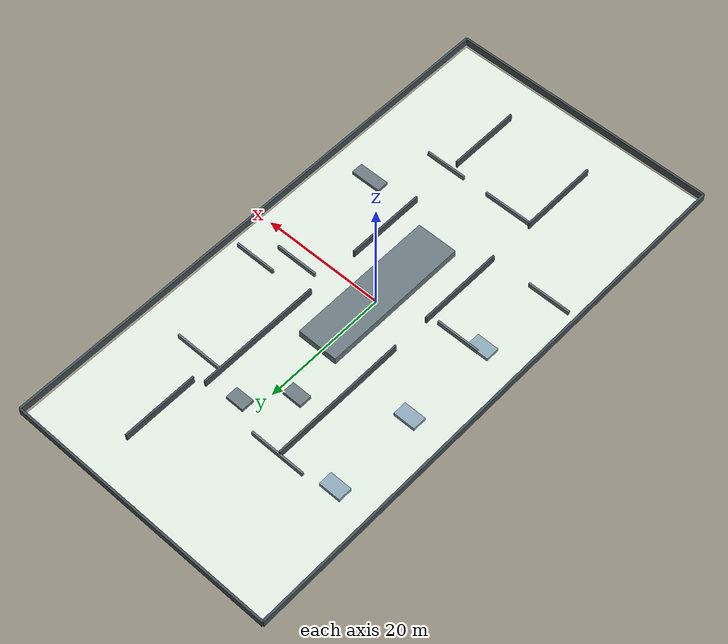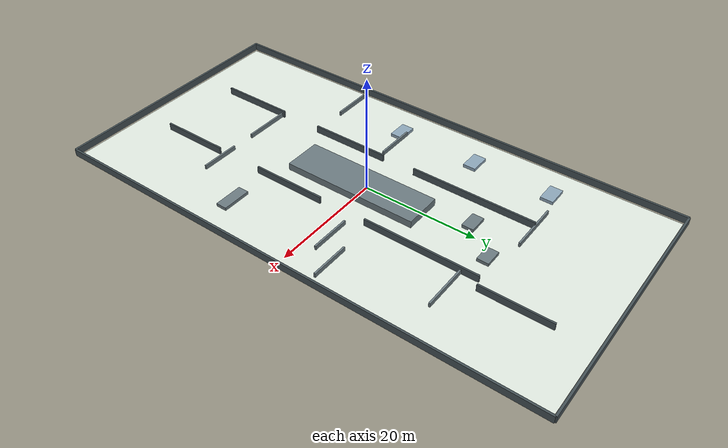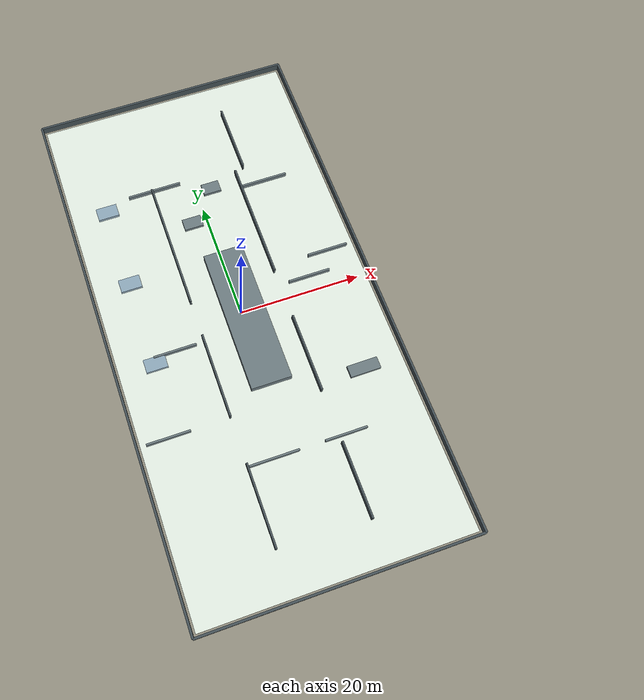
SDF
<?xml version="1.0" ?>
<sdf version="1.6">
  <world name="conflict_trap_facility">
    <gravity>0 0 -9.8</gravity>
    <scene>
      <ambient>0.65 0.65 0.65 1</ambient>
      <background>0.78 0.84 0.88 1</background>
    </scene>
    <include>
      <uri>model://sun</uri>
    </include>
    <model name="conflict_trap_facility_floor">
      <static>true</static>
      <pose>0.000 0.000 -0.025 0 0 0</pose>
      <link name="floor_link">
        <collision name="floor_collision">
          <geometry>
            <box><size>43.000 87.000 0.050</size></box>
          </geometry>
        </collision>
        <visual name="floor_visual">
          <geometry>
            <box><size>43.000 87.000 0.050</size></box>
          </geometry>
          <material><ambient>0.88 0.92 0.88 1</ambient><diffuse>0.88 0.92 0.88 1</diffuse></material>
        </visual>
      </link>
    </model>
    <model name="outer_north">
      <static>true</static>
      <pose>0.000 44.000 0.625 0 0 0</pose>
      <link name="outer_north_link">
        <collision name="outer_north_collision">
          <geometry>
            <box><size>44.000 0.350 1.250</size></box>
          </geometry>
        </collision>
        <visual name="outer_north_visual">
          <geometry>
            <box><size>44.000 0.350 1.250</size></box>
          </geometry>
          <material><ambient>0.27 0.32 0.34 1</ambient><diffuse>0.27 0.32 0.34 1</diffuse></material>
        </visual>
      </link>
    </model>
    <model name="outer_south">
      <static>true</static>
      <pose>0.000 -44.000 0.625 0 0 0</pose>
      <link name="outer_south_link">
        <collision name="outer_south_collision">
          <geometry>
            <box><size>44.000 0.350 1.250</size></box>
          </geometry>
        </collision>
        <visual name="outer_south_visual">
          <geometry>
            <box><size>44.000 0.350 1.250</size></box>
          </geometry>
          <material><ambient>0.27 0.32 0.34 1</ambient><diffuse>0.27 0.32 0.34 1</diffuse></material>
        </visual>
      </link>
    </model>
    <model name="outer_west">
      <static>true</static>
      <pose>-22.000 0.000 0.625 0 0 0</pose>
      <link name="outer_west_link">
        <collision name="outer_west_collision">
          <geometry>
            <box><size>0.350 88.000 1.250</size></box>
          </geometry>
        </collision>
        <visual name="outer_west_visual">
          <geometry>
            <box><size>0.350 88.000 1.250</size></box>
          </geometry>
          <material><ambient>0.27 0.32 0.34 1</ambient><diffuse>0.27 0.32 0.34 1</diffuse></material>
        </visual>
      </link>
    </model>
    <model name="outer_east">
      <static>true</static>
      <pose>22.000 0.000 0.625 0 0 0</pose>
      <link name="outer_east_link">
        <collision name="outer_east_collision">
          <geometry>
            <box><size>0.350 88.000 1.250</size></box>
          </geometry>
        </collision>
        <visual name="outer_east_visual">
          <geometry>
            <box><size>0.350 88.000 1.250</size></box>
          </geometry>
          <material><ambient>0.27 0.32 0.34 1</ambient><diffuse>0.27 0.32 0.34 1</diffuse></material>
        </visual>
      </link>
    </model>
    <model name="trap_loop_core">
      <static>true</static>
      <pose>0.500 -1.000 0.625 0 0 0</pose>
      <link name="trap_loop_core_link">
        <collision name="trap_loop_core_collision">
          <geometry>
            <box><size>6.600 24.000 1.250</size></box>
          </geometry>
        </collision>
        <visual name="trap_loop_core_visual">
          <geometry>
            <box><size>6.600 24.000 1.250</size></box>
          </geometry>
          <material><ambient>0.42 0.48 0.50 1</ambient><diffuse>0.42 0.48 0.50 1</diffuse></material>
        </visual>
      </link>
    </model>
    <model name="trap_wall_w_l1">
      <static>true</static>
      <pose>-7.200 -30.000 0.625 0 0 0</pose>
      <link name="trap_wall_w_l1_link">
        <collision name="trap_wall_w_l1_collision">
          <geometry>
            <box><size>0.300 13.000 1.250</size></box>
          </geometry>
        </collision>
        <visual name="trap_wall_w_l1_visual">
          <geometry>
            <box><size>0.300 13.000 1.250</size></box>
          </geometry>
          <material><ambient>0.27 0.32 0.34 1</ambient><diffuse>0.27 0.32 0.34 1</diffuse></material>
        </visual>
      </link>
    </model>
    <model name="trap_wall_w_l2">
      <static>true</static>
      <pose>-7.200 -9.000 0.625 0 0 0</pose>
      <link name="trap_wall_w_l2_link">
        <collision name="trap_wall_w_l2_collision">
          <geometry>
            <box><size>0.300 14.000 1.250</size></box>
          </geometry>
        </collision>
        <visual name="trap_wall_w_l2_visual">
          <geometry>
            <box><size>0.300 14.000 1.250</size></box>
          </geometry>
          <material><ambient>0.27 0.32 0.34 1</ambient><diffuse>0.27 0.32 0.34 1</diffuse></material>
        </visual>
      </link>
    </model>
    <model name="trap_wall_w_l3">
      <static>true</static>
      <pose>-7.200 15.000 0.625 0 0 0</pose>
      <link name="trap_wall_w_l3_link">
        <collision name="trap_wall_w_l3_collision">
          <geometry>
            <box><size>0.300 22.000 1.250</size></box>
          </geometry>
        </collision>
        <visual name="trap_wall_w_l3_visual">
          <geometry>
            <box><size>0.300 22.000 1.250</size></box>
          </geometry>
          <material><ambient>0.27 0.32 0.34 1</ambient><diffuse>0.27 0.32 0.34 1</diffuse></material>
        </visual>
      </link>
    </model>
    <model name="trap_wall_e_l1">
      <static>true</static>
      <pose>7.400 -31.000 0.625 0 0 0</pose>
      <link name="trap_wall_e_l1_link">
        <collision name="trap_wall_e_l1_collision">
          <geometry>
            <box><size>0.300 12.000 1.250</size></box>
          </geometry>
        </collision>
        <visual name="trap_wall_e_l1_visual">
          <geometry>
            <box><size>0.300 12.000 1.250</size></box>
          </geometry>
          <material><ambient>0.27 0.32 0.34 1</ambient><diffuse>0.27 0.32 0.34 1</diffuse></material>
        </visual>
      </link>
    </model>
    <model name="trap_wall_e_l2">
      <static>true</static>
      <pose>7.400 -10.000 0.625 0 0 0</pose>
      <link name="trap_wall_e_l2_link">
        <collision name="trap_wall_e_l2_collision">
          <geometry>
            <box><size>0.300 13.000 1.250</size></box>
          </geometry>
        </collision>
        <visual name="trap_wall_e_l2_visual">
          <geometry>
            <box><size>0.300 13.000 1.250</size></box>
          </geometry>
          <material><ambient>0.27 0.32 0.34 1</ambient><diffuse>0.27 0.32 0.34 1</diffuse></material>
        </visual>
      </link>
    </model>
    <model name="trap_wall_e_l3">
      <static>true</static>
      <pose>7.400 15.000 0.625 0 0 0</pose>
      <link name="trap_wall_e_l3_link">
        <collision name="trap_wall_e_l3_collision">
          <geometry>
            <box><size>0.300 20.000 1.250</size></box>
          </geometry>
        </collision>
        <visual name="trap_wall_e_l3_visual">
          <geometry>
            <box><size>0.300 20.000 1.250</size></box>
          </geometry>
          <material><ambient>0.27 0.32 0.34 1</ambient><diffuse>0.27 0.32 0.34 1</diffuse></material>
        </visual>
      </link>
    </model>
    <model name="trap_cross_s_w">
      <static>true</static>
      <pose>-3.000 -24.000 0.375 0 0 0</pose>
      <link name="trap_cross_s_w_link">
        <collision name="trap_cross_s_w_collision">
          <geometry>
            <box><size>8.000 0.300 0.750</size></box>
          </geometry>
        </collision>
        <visual name="trap_cross_s_w_visual">
          <geometry>
            <box><size>8.000 0.300 0.750</size></box>
          </geometry>
          <material><ambient>0.42 0.48 0.50 1</ambient><diffuse>0.42 0.48 0.50 1</diffuse></material>
        </visual>
      </link>
    </model>
    <model name="trap_cross_s_e">
      <static>true</static>
      <pose>8.500 -24.000 0.375 0 0 0</pose>
      <link name="trap_cross_s_e_link">
        <collision name="trap_cross_s_e_collision">
          <geometry>
            <box><size>6.800 0.300 0.750</size></box>
          </geometry>
        </collision>
        <visual name="trap_cross_s_e_visual">
          <geometry>
            <box><size>6.800 0.300 0.750</size></box>
          </geometry>
          <material><ambient>0.42 0.48 0.50 1</ambient><diffuse>0.42 0.48 0.50 1</diffuse></material>
        </visual>
      </link>
    </model>
    <model name="trap_cross_m_w">
      <static>true</static>
      <pose>-12.000 -3.000 0.375 0 0 0</pose>
      <link name="trap_cross_m_w_link">
        <collision name="trap_cross_m_w_collision">
          <geometry>
            <box><size>7.000 0.300 0.750</size></box>
          </geometry>
        </collision>
        <visual name="trap_cross_m_w_visual">
          <geometry>
            <box><size>7.000 0.300 0.750</size></box>
          </geometry>
          <material><ambient>0.42 0.48 0.50 1</ambient><diffuse>0.42 0.48 0.50 1</diffuse></material>
        </visual>
      </link>
    </model>
    <model name="trap_cross_m_e">
      <static>true</static>
      <pose>12.500 2.500 0.375 0 0 0</pose>
      <link name="trap_cross_m_e_link">
        <collision name="trap_cross_m_e_collision">
          <geometry>
            <box><size>7.000 0.300 0.750</size></box>
          </geometry>
        </collision>
        <visual name="trap_cross_m_e_visual">
          <geometry>
            <box><size>7.000 0.300 0.750</size></box>
          </geometry>
          <material><ambient>0.42 0.48 0.50 1</ambient><diffuse>0.42 0.48 0.50 1</diffuse></material>
        </visual>
      </link>
    </model>
    <model name="trap_cross_n_w">
      <static>true</static>
      <pose>-6.800 26.000 0.375 0 0 0</pose>
      <link name="trap_cross_n_w_link">
        <collision name="trap_cross_n_w_collision">
          <geometry>
            <box><size>9.000 0.300 0.750</size></box>
          </geometry>
        </collision>
        <visual name="trap_cross_n_w_visual">
          <geometry>
            <box><size>9.000 0.300 0.750</size></box>
          </geometry>
          <material><ambient>0.42 0.48 0.50 1</ambient><diffuse>0.42 0.48 0.50 1</diffuse></material>
        </visual>
      </link>
    </model>
    <model name="trap_cross_n_e">
      <static>true</static>
      <pose>11.500 22.000 0.375 0 0 0</pose>
      <link name="trap_cross_n_e_link">
        <collision name="trap_cross_n_e_collision">
          <geometry>
            <box><size>8.000 0.300 0.750</size></box>
          </geometry>
        </collision>
        <visual name="trap_cross_n_e_visual">
          <geometry>
            <box><size>8.000 0.300 0.750</size></box>
          </geometry>
          <material><ambient>0.42 0.48 0.50 1</ambient><diffuse>0.42 0.48 0.50 1</diffuse></material>
        </visual>
      </link>
    </model>
    <model name="trap_store_wall">
      <static>true</static>
      <pose>9.000 31.500 0.625 0 0 0</pose>
      <link name="trap_store_wall_link">
        <collision name="trap_store_wall_collision">
          <geometry>
            <box><size>0.300 12.000 1.250</size></box>
          </geometry>
        </collision>
        <visual name="trap_store_wall_visual">
          <geometry>
            <box><size>0.300 12.000 1.250</size></box>
          </geometry>
          <material><ambient>0.27 0.32 0.34 1</ambient><diffuse>0.27 0.32 0.34 1</diffuse></material>
        </visual>
      </link>
    </model>
    <model name="trap_dead_end_a">
      <static>true</static>
      <pose>-17.000 -16.000 0.375 0 0 0</pose>
      <link name="trap_dead_end_a_link">
        <collision name="trap_dead_end_a_collision">
          <geometry>
            <box><size>7.000 0.300 0.750</size></box>
          </geometry>
        </collision>
        <visual name="trap_dead_end_a_visual">
          <geometry>
            <box><size>7.000 0.300 0.750</size></box>
          </geometry>
          <material><ambient>0.42 0.48 0.50 1</ambient><diffuse>0.42 0.48 0.50 1</diffuse></material>
        </visual>
      </link>
    </model>
    <model name="trap_dead_end_b">
      <static>true</static>
      <pose>17.000 6.000 0.375 0 0 0</pose>
      <link name="trap_dead_end_b_link">
        <collision name="trap_dead_end_b_collision">
          <geometry>
            <box><size>6.800 0.300 0.750</size></box>
          </geometry>
        </collision>
        <visual name="trap_dead_end_b_visual">
          <geometry>
            <box><size>6.800 0.300 0.750</size></box>
          </geometry>
          <material><ambient>0.42 0.48 0.50 1</ambient><diffuse>0.42 0.48 0.50 1</diffuse></material>
        </visual>
      </link>
    </model>
    <model name="trap_table_1">
      <static>true</static>
      <pose>-2.500 18.000 0.275 0 0 0</pose>
      <link name="trap_table_1_link">
        <collision name="trap_table_1_collision">
          <geometry>
            <box><size>3.200 2.000 0.550</size></box>
          </geometry>
        </collision>
        <visual name="trap_table_1_visual">
          <geometry>
            <box><size>3.200 2.000 0.550</size></box>
          </geometry>
          <material><ambient>0.42 0.48 0.50 1</ambient><diffuse>0.42 0.48 0.50 1</diffuse></material>
        </visual>
      </link>
    </model>
    <model name="trap_table_2">
      <static>true</static>
      <pose>2.500 23.500 0.275 0 0 0</pose>
      <link name="trap_table_2_link">
        <collision name="trap_table_2_collision">
          <geometry>
            <box><size>3.000 2.000 0.550</size></box>
          </geometry>
        </collision>
        <visual name="trap_table_2_visual">
          <geometry>
            <box><size>3.000 2.000 0.550</size></box>
          </geometry>
          <material><ambient>0.42 0.48 0.50 1</ambient><diffuse>0.42 0.48 0.50 1</diffuse></material>
        </visual>
      </link>
    </model>
    <model name="trap_bed_1">
      <static>true</static>
      <pose>-15.500 -4.000 0.275 0 0 0</pose>
      <link name="trap_bed_1_link">
        <collision name="trap_bed_1_collision">
          <geometry>
            <box><size>3.500 2.200 0.550</size></box>
          </geometry>
        </collision>
        <visual name="trap_bed_1_visual">
          <geometry>
            <box><size>3.500 2.200 0.550</size></box>
          </geometry>
          <material><ambient>0.55 0.65 0.72 1</ambient><diffuse>0.55 0.65 0.72 1</diffuse></material>
        </visual>
      </link>
    </model>
    <model name="trap_bed_2">
      <static>true</static>
      <pose>-15.500 10.500 0.275 0 0 0</pose>
      <link name="trap_bed_2_link">
        <collision name="trap_bed_2_collision">
          <geometry>
            <box><size>3.500 2.200 0.550</size></box>
          </geometry>
        </collision>
        <visual name="trap_bed_2_visual">
          <geometry>
            <box><size>3.500 2.200 0.550</size></box>
          </geometry>
          <material><ambient>0.55 0.65 0.72 1</ambient><diffuse>0.55 0.65 0.72 1</diffuse></material>
        </visual>
      </link>
    </model>
    <model name="trap_bed_3">
      <static>true</static>
      <pose>-15.500 24.500 0.275 0 0 0</pose>
      <link name="trap_bed_3_link">
        <collision name="trap_bed_3_collision">
          <geometry>
            <box><size>3.500 2.200 0.550</size></box>
          </geometry>
        </collision>
        <visual name="trap_bed_3_visual">
          <geometry>
            <box><size>3.500 2.200 0.550</size></box>
          </geometry>
          <material><ambient>0.55 0.65 0.72 1</ambient><diffuse>0.55 0.65 0.72 1</diffuse></material>
        </visual>
      </link>
    </model>
    <model name="trap_lab_bench">
      <static>true</static>
      <pose>15.000 -15.000 0.275 0 0 0</pose>
      <link name="trap_lab_bench_link">
        <collision name="trap_lab_bench_collision">
          <geometry>
            <box><size>5.000 1.900 0.550</size></box>
          </geometry>
        </collision>
        <visual name="trap_lab_bench_visual">
          <geometry>
            <box><size>5.000 1.900 0.550</size></box>
          </geometry>
          <material><ambient>0.42 0.48 0.50 1</ambient><diffuse>0.42 0.48 0.50 1</diffuse></material>
        </visual>
      </link>
    </model>
  </world>
</sdf>
